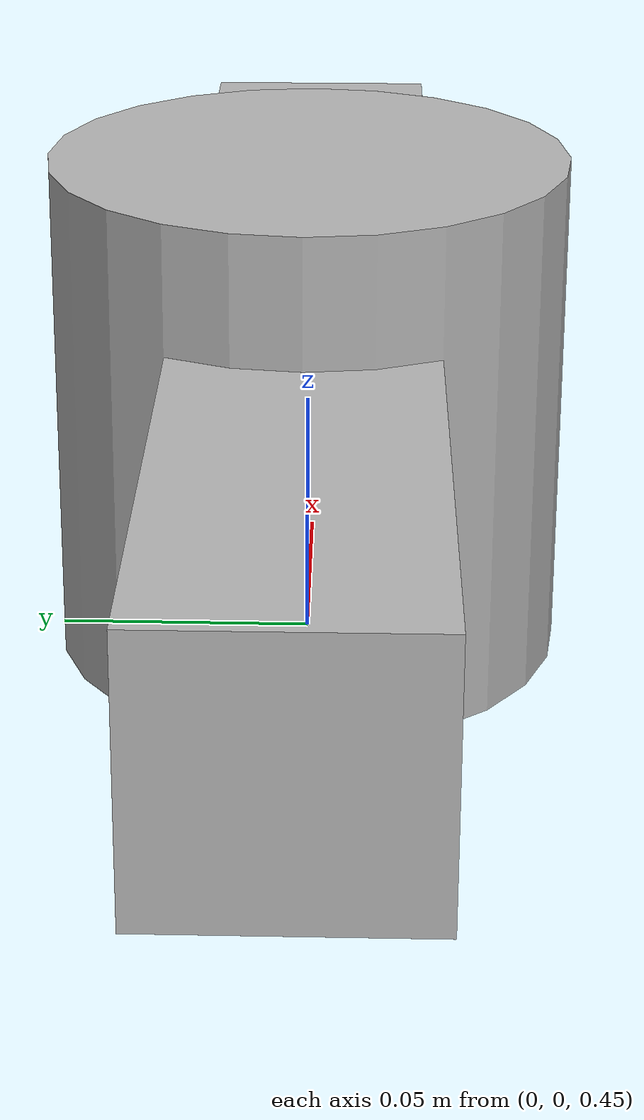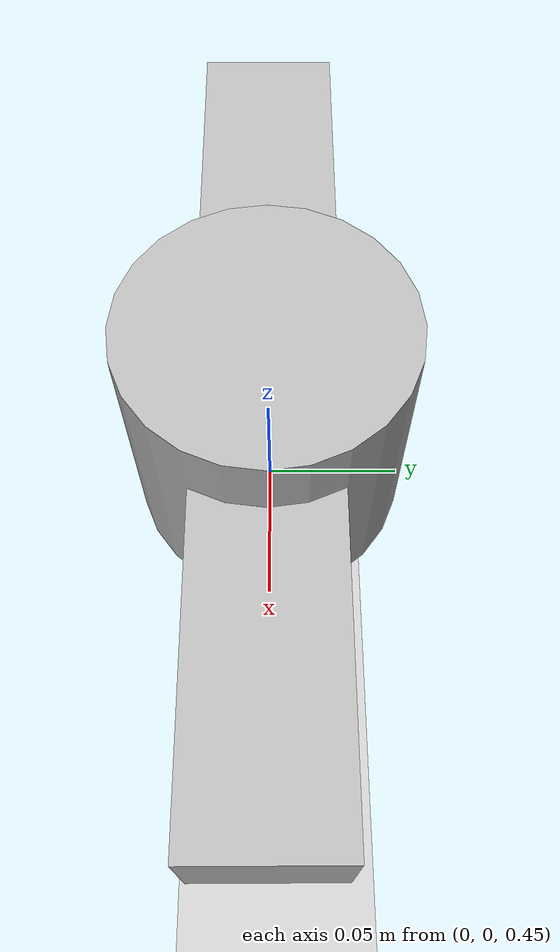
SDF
<?xml version="1.0"?>
<sdf version="1.6">
  <world name="default">
    <include>
      <uri>model://sun</uri>
    </include>
    <include>
      <uri>model://ground_plane</uri>
    </include>
    <plugin filename="libgazebo_ros_init.so" name="gazebo_ros_init">
      <ros>
        <namespace>/</namespace>
      </ros>
    </plugin>
    <plugin filename="libgazebo_ros_factory.so" name="gazebo_ros_factory"/>
    <model name="test_arm">
      <pose>0 0 0.5 0 0 0</pose>
      <link name="base_link">
        <visual name="visual">
          <geometry>
            <cylinder>
              <radius>0.05</radius>
              <length>0.1</length>
            </cylinder>
          </geometry>
        </visual>
        <collision name="collision">
          <geometry>
            <cylinder>
              <radius>0.05</radius>
              <length>0.1</length>
            </cylinder>
          </geometry>
        </collision>
        <inertial>
          <mass>1.0</mass>
          <inertia>
            <ixx>0.001</ixx>
            <iyy>0.001</iyy>
            <izz>0.001</izz>
          </inertia>
        </inertial>
      </link>
      <link name="link1">
        <visual name="visual">
          <geometry>
            <box>
              <size>0.3 0.05 0.05</size>
            </box>
          </geometry>
        </visual>
        <collision name="collision">
          <geometry>
            <box>
              <size>0.3 0.05 0.05</size>
            </box>
          </geometry>
        </collision>
        <inertial>
          <mass>0.5</mass>
          <inertia>
            <ixx>0.001</ixx>
            <iyy>0.001</iyy>
            <izz>0.001</izz>
          </inertia>
        </inertial>
      </link>
      <joint name="joint1" type="revolute">
        <parent>base_link</parent>
        <child>link1</child>
        <axis>
          <xyz>0 0 1</xyz>
          <limit>
            <lower>-3.14</lower>
            <upper>3.14</upper>
          </limit>
        </axis>
      </joint>
      <plugin filename="libgazebo_ros2_control.so" name="gazebo_ros2_control">
        <robot_param>robot_description</robot_param>
        <robot_param_node>robot_state_publisher</robot_param_node>
      </plugin>
    </model>
  </world>
</sdf>
